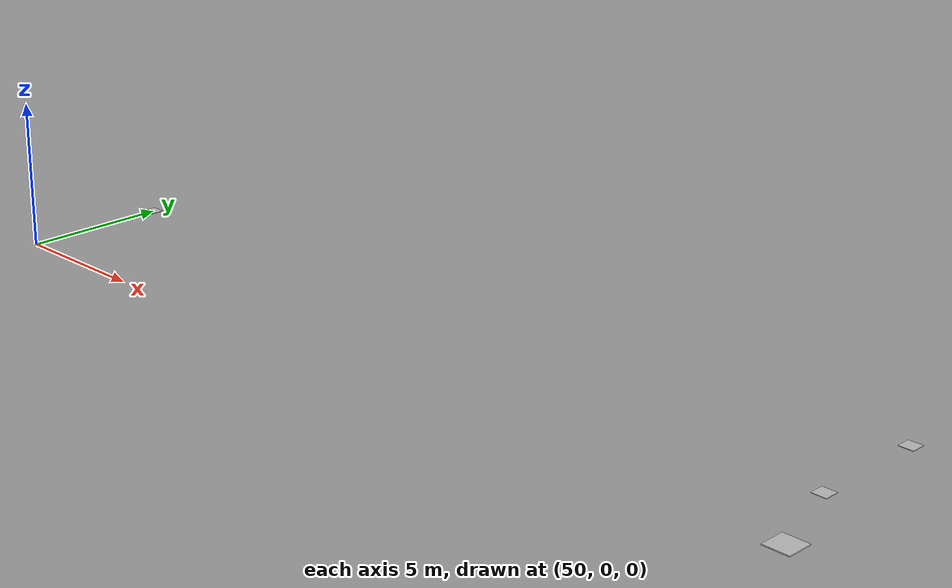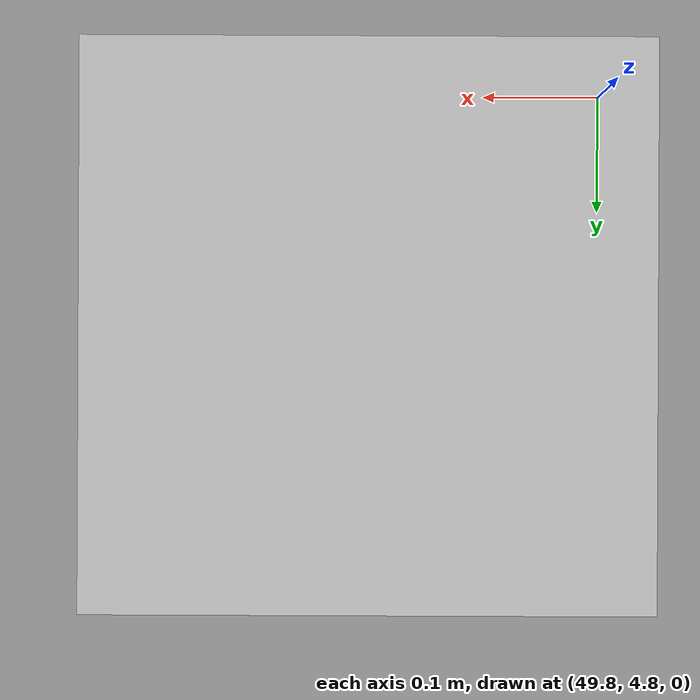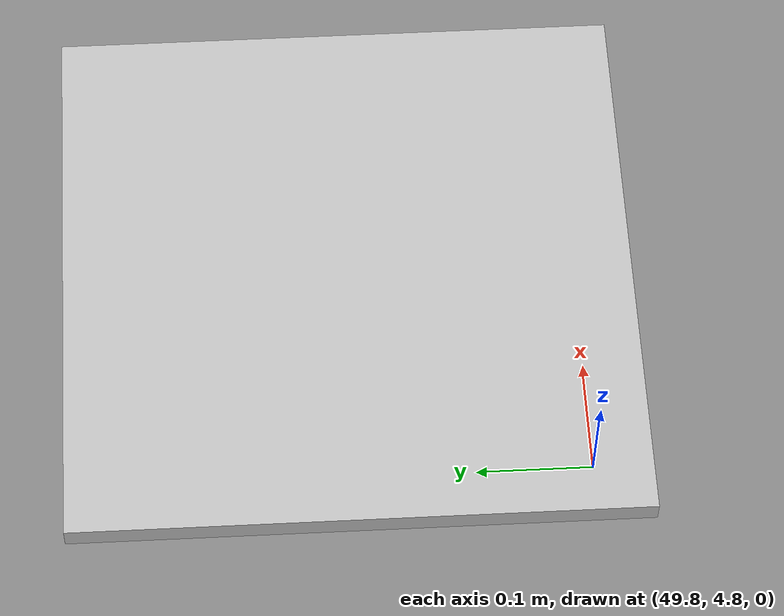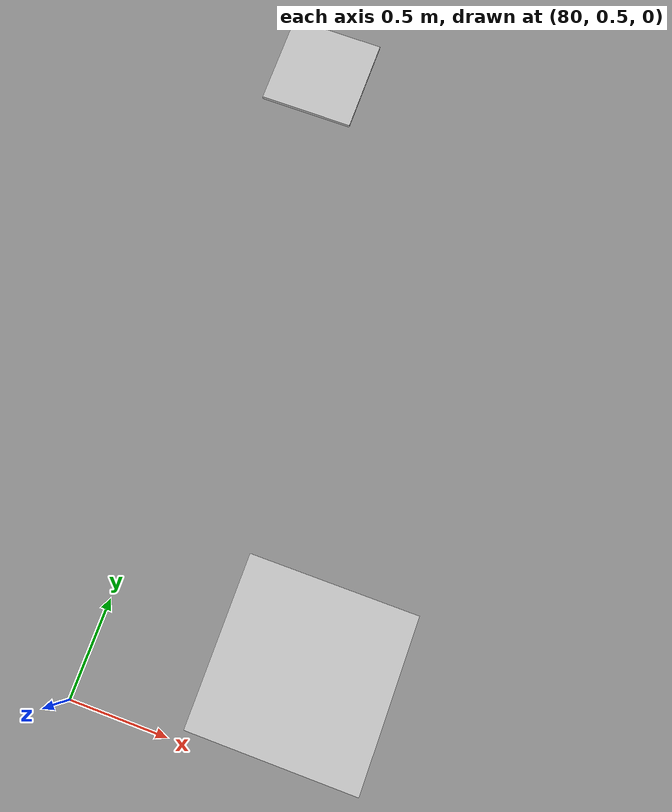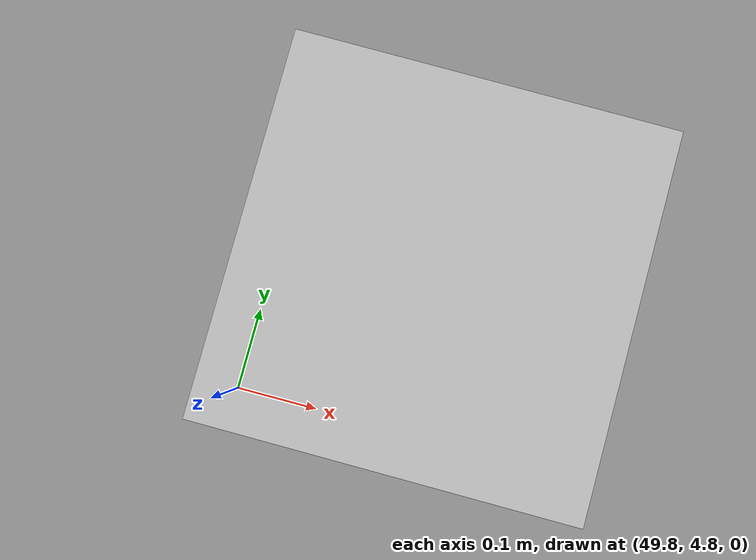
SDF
<sdf version="1.9">
 <world name="default">
  <physics type="ode">
   <max_step_size>0.004</max_step_size>
   <real_time_factor>1.0</real_time_factor>
   <real_time_update_rate>250</real_time_update_rate>
  </physics>
  <plugin name="gz::sim::systems::Physics" filename="gz-sim-physics-system"/>
  <plugin name="gz::sim::systems::UserCommands" filename="gz-sim-user-commands-system"/>
  <plugin name="gz::sim::systems::SceneBroadcaster" filename="gz-sim-scene-broadcaster-system"/>
  <plugin name="gz::sim::systems::Contact" filename="gz-sim-contact-system"/>
  <plugin name="gz::sim::systems::Imu" filename="gz-sim-imu-system"/>
  <plugin name="gz::sim::systems::AirPressure" filename="gz-sim-air-pressure-system"/>
  <plugin name="gz::sim::systems::ApplyLinkWrench" filename="gz-sim-apply-link-wrench-system"/>
  <plugin name="gz::sim::systems::NavSat" filename="gz-sim-navsat-system"/>
  <plugin name="gz::sim::systems::Sensors" filename="gz-sim-sensors-system">
   <render_engine>ogre2</render_engine>
  </plugin>
  <gravity>0 0 -9.8</gravity>
  <magnetic_field>6e-06 2.3e-05 -4.2e-05</magnetic_field>
  <atmosphere type="adiabatic"/>
  <scene>
   <grid>false</grid>
   <ambient>0.4 0.4 0.4 1</ambient>
   <background>0.7 0.7 0.7 1</background>
   <shadows>true</shadows>
  </scene>
  <light name="sunUTC" type="directional">
   <pose>0 0 500 0 -0 0</pose>
   <intensity>1</intensity>
   <direction>0.001 0.625 -0.78</direction>
   <diffuse>0.904 0.904 0.904 1</diffuse>
   <specular>0.271 0.271 0.271 1</specular>
   <attenuation><range>2000</range><linear>0</linear><constant>1</constant><quadratic>0</quadratic></attenuation>
   <spot><inner_angle>0</inner_angle><outer_angle>0</outer_angle><falloff>0</falloff></spot>
  </light>
  <spherical_coordinates>
   <surface_model>EARTH_WGS84</surface_model>
   <world_frame_orientation>ENU</world_frame_orientation>
   <latitude_deg>47.280858</latitude_deg>
   <longitude_deg>38.938235</longitude_deg>
   <elevation>0</elevation>
  </spherical_coordinates>
  <include><uri>model://aruco_1</uri><pose relative_to="world">81 1 0 0 0 0</pose><name>aruco1</name></include>
  <include><uri>model://aruco_2</uri><pose relative_to="world">80 4 0 0 0 0</pose><name>aruco2</name></include>
  <include><uri>model://aruco_3</uri><pose relative_to="world">80 8 0 0 0 0</pose><name>aruco3</name></include>
  <include>
   <uri>model://aruco_777</uri>
   <pose relative_to="world">50 5 0 0 0 0</pose>
   <name>aruco777</name>
  </include>
 </world>
</sdf>

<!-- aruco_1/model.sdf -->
<sdf version="1.6">
  <model name="aruco_1">
    <static>true</static>
    <link name="link">
      <collision name="collision">
        <geometry>
          <mesh>
            <scale>3.5 3.5 3.5</scale>
            <uri>model://aruco_1/meshes/marker.stl</uri>
          </mesh>
           <surface>
            <friction>
              <ode>
                <mu>1.2</mu>
                <mu2>1.2</mu2>
              </ode>
            </friction>
          </surface>
        </geometry>
      </collision>
      <visual name="visual">
        <geometry>
          <mesh>
            <scale>3.5 3.5 3.5</scale>
            <uri>model://aruco_1/meshes/marker.dae</uri>
          </mesh>
        </geometry>
      </visual>
    </link>
  </model>
</sdf>

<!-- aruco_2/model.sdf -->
<sdf version="1.6">
  <model name="aruco_2">
    <static>true</static>
    <link name="link">
      <collision name="collision">
        <geometry>
          <mesh>
            <scale>2 2 2</scale>
            <uri>model://aruco_2/meshes/marker.stl</uri>
          </mesh>
           <surface>
            <friction>
              <ode>
                <mu>1.2</mu>
                <mu2>1.2</mu2>
              </ode>
            </friction>
          </surface>
        </geometry>
      </collision>
      <visual name="visual">
        <geometry>
          <mesh>
            <scale>2 2 2</scale>
            <uri>model://aruco_2/meshes/marker.dae</uri>
          </mesh>
        </geometry>
      </visual>
    </link>
  </model>
</sdf>

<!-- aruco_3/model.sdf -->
<sdf version="1.6">
  <model name="aruco_3">
    <static>true</static>
    <link name="link">
      <collision name="collision">
        <geometry>
          <mesh>
            <scale>2 2 2</scale>
            <uri>model://aruco_3/meshes/marker.stl</uri>
          </mesh>
           <surface>
            <friction>
              <ode>
                <mu>1.2</mu>
                <mu2>1.2</mu2>
              </ode>
            </friction>
          </surface>
        </geometry>
      </collision>
      <visual name="visual">
        <geometry>
          <mesh>
            <scale>2 2 2</scale>
            <uri>model://aruco_3/meshes/marker.dae</uri>
          </mesh>
        </geometry>
      </visual>
    </link>
  </model>
</sdf>

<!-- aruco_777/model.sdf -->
<sdf version="1.6">
  <model name="aruco_777">
    <static>true</static>
    <link name="link">
      <collision name="collision">
        <geometry>
          <mesh>
            <scale>2 2 2</scale>
            <uri>model://aruco_777/meshes/marker.stl</uri>
          </mesh>
           <surface>
            <friction>
              <ode>
                <mu>1.2</mu>
                <mu2>1.2</mu2>
              </ode>
            </friction>
          </surface>
        </geometry>
      </collision>
      <visual name="visual">
        <geometry>
          <mesh>
            <scale>2 2 2</scale>
            <uri>model://aruco_777/meshes/marker.dae</uri>
          </mesh>
        </geometry>
      </visual>
    </link>
  </model>
</sdf>
